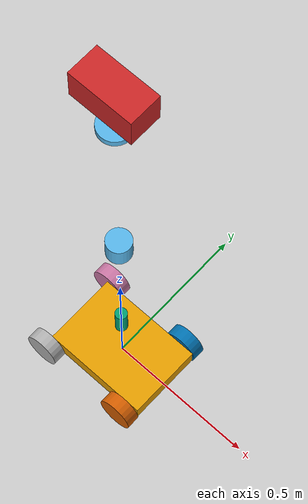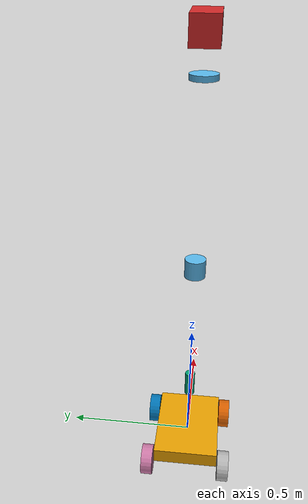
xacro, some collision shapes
<?xml version="1.0"?>

<robot name="nesfr3_simple" xmlns:xacro="http://www.ros.org/wiki/xacro">

  <xacro:arg name="index" default="1"/>

  <!-- include gazebo plugins -->
  <xacro:include filename="$(find nesfr3_description)/urdf/nesfr3.gazebo" />
  <xacro:include filename="$(find nesfr3_description)/urdf/materials.xacro" />

  <xacro:arg name="base_width" default="0.26"/>
  <xacro:arg name="base_length" default="0.371"/>
  <xacro:arg name="base_height" default="0.058"/>
  <xacro:property name="base_width" value="$(arg base_width)"/>
  <xacro:property name="base_length" value="$(arg base_length)"/>
  <xacro:property name="base_height" value="$(arg base_height)"/>

  <xacro:arg name="wheel_radius" default="0.06"/>
  <xacro:arg name="wheel_width" default="0.045"/>
  <xacro:arg name="wheel_gap" default="0.025"/>
  <xacro:arg name="wheel_setback_f" default="0.055"/> <!--원래거 -->
  <xacro:arg name="wheel_setback_b" default="-0.005"/>
  <xacro:arg name="wheel_height" default="-0.016"/>
  <xacro:property name="wheel_radius" value="$(arg wheel_radius)"/>
  <xacro:property name="wheel_width" value="$(arg wheel_width)"/>
  <xacro:property name="wheel_gap" value="$(arg wheel_gap)"/>
  <xacro:property name="wheel_setback_f" value="$(arg wheel_setback_f)"/> <!--원래거 -->
  <xacro:property name="wheel_setback_b" value="$(arg wheel_setback_b)"/>
  <xacro:property name="wheel_height" value="$(arg wheel_height)"/>

  <xacro:arg name="gpu" default="true"/>
  <xacro:arg name="lidar_height" default="0.8"/>
  <xacro:property name="gpu" value="$(arg gpu)"/>
  <xacro:property name="lidar_height" value="$(arg lidar_height)"/>

  <!--~~~~~~~~~~~~~~~~~~~~~~~~ ~ ROBOT BASE ~ ~~~~~~~~~~~~~~~~~~~~~~~~~~~~~~-->

    <!-- Make a box for robot base -->
  <link name="base_link">
    <collision>
      <origin xyz="0 0 0.0" rpy="0 0 0"/>
      <geometry>
       <box size="${base_length} ${base_width} ${base_height}"/>
      </geometry>
    </collision>
    <visual>
      <origin xyz="0 0 0.0" rpy="0 0 0"/>
      <geometry>
	       <box size="${base_length} ${base_width} ${base_height}"/>
      </geometry>
    </visual>
    <inertial>
      <mass value="7.032" />
      <origin xyz="0 0 0" rpy="0 0 0"/>

      <inertia ixx="0.041585" ixy="0" ixz="0" iyy="0.08263" iyz="0" izz="0.12027" />
    </inertial>
  </link>

  <xacro:include filename="$(find ouster_description)/urdf/OS1-64.urdf.xacro"/>
  <xacro:OS1-64 parent="base_link" name="os1_sensor" topic_points="lidar/points" hz="40" samples="1024" min_range="0.1" max_range="125" lidar_link="lidar_link" imu_link="imu_link">
      <origin xyz="0 0 ${lidar_height}" rpy="0 0 0" />
  </xacro:OS1-64>

  <link name="fl_link">
      <visual>
        <geometry>
          <cylinder length="${wheel_width}" radius="${wheel_radius}"/>
        </geometry>
        <origin rpy="${pi/2} 0 0" xyz="0 0 0"/>
      </visual>
      <collision>
        <geometry>
          <cylinder length="${wheel_width}" radius="${wheel_radius}"/>
        </geometry>
	     <origin rpy="${pi/2} 0 0" xyz="0 0 0"/>
        <surface>
          <friction>
            <ode>
              <mu>0.01</mu>
              <mu2>0.01</mu2>
            </ode>
          </friction>
        </surface>
      </collision>
      <inertial>
        <mass value="0.617" />
        <origin rpy="${pi/2} 0 0" xyz="0 0 0"/>
        <inertia ixx="0.0006594" ixy="0" ixz="0" iyy="0.0006594" iyz="0" izz="0.0011106" />
      </inertial>
    </link>

    <link name="fr_link">
        <visual>
          <geometry>
            <cylinder length="${wheel_width}" radius="${wheel_radius}"/>
          </geometry>
          <origin rpy="${pi/2} 0 0" xyz="0 0 0"/>
        </visual>
        <collision>
          <geometry>
            <cylinder length="${wheel_width}" radius="${wheel_radius}"/>
          </geometry>
          <origin rpy="${pi/2} 0 0" xyz="0 0 0"/>
        <surface>
          <friction>
            <ode>
              <mu>0.01</mu>
              <mu2>0.01</mu2>
            </ode>
          </friction>
        </surface>
        </collision>
        <inertial>
          <mass value="0.617" />
          <origin rpy="${pi/2} 0 0" xyz="0 0 0"/>
          <inertia ixx="0.0006594" ixy="0" ixz="0" iyy="0.0006594" iyz="0" izz="0.0011106" />
        </inertial>
      </link>

      <link name="bl_link">
          <visual>
            <geometry>
              <cylinder length="${wheel_width}" radius="${wheel_radius}"/>
            </geometry>
            <origin rpy="${pi/2} 0 0" xyz="0 0 0"/>
          </visual>
          <collision>
            <geometry>
              <cylinder length="${wheel_width}" radius="${wheel_radius}"/>
            </geometry>
            <origin rpy="${pi/2} 0 0" xyz="0 0 0"/>
        <surface>
          <friction>
            <ode>
              <mu>0.01</mu>
              <mu2>0.01</mu2>
            </ode>
          </friction>
        </surface>
          </collision>
          <inertial>
            <mass value="0.617" />
            <origin rpy="${pi/2} 0 0" xyz="0 0 0"/>
            <inertia ixx="0.0006594" ixy="0" ixz="0" iyy="0.0006594" iyz="0" izz="0.0011106" />
          </inertial>
        </link>

        <link name="br_link">
            <visual>
              <geometry>
                <cylinder length="${wheel_width}" radius="${wheel_radius}"/>
              </geometry>
              <origin rpy="${pi/2} 0 0" xyz="0 0 0"/>
            </visual>
            <collision>
              <geometry>
                <cylinder length="${wheel_width}" radius="${wheel_radius}"/>
              </geometry>
              <origin rpy="${pi/2} 0 0" xyz="0 0 0"/>
        <surface>
          <friction>
            <ode>
              <mu>0.01</mu>
              <mu2>0.01</mu2>
            </ode>
          </friction>
        </surface>

            </collision>
            <inertial>
              <mass value="0.617" />
              <origin rpy="${pi/2} 0 0" xyz="0 0 0"/>
              <inertia ixx="0.0006594" ixy="0" ixz="0" iyy="0.0006594" iyz="0" izz="0.0011106" />
            </inertial>
          </link>

  <!--~~~~~~~~~~~~~~~~~~~~~~~ ~ Lidar ~ ~~~~~~~~~~~~~~~~~~~~~~~~~~~~~-->

<!-- Main Camera -->

  <link name="camera_link">
    <collision>
      <origin xyz="0 0 0" rpy="0 0 0"/>
      <geometry>
	        <box size="0.2 0.1 0.1"/>
      </geometry>
    </collision>
    <visual>
      <origin xyz="0 0 0" rpy="0 0 0"/>
      <geometry>
	        <box size="0.2 0.1 0.1"/>
      </geometry>
    </visual>
    <inertial>
      <mass value="1" />
      <origin xyz="0 0 0" rpy="0 0 0"/>
      <inertia ixx="0.0016667" ixy="0" ixz="0" iyy="0.004167" iyz="0" izz="0.004167" />
    </inertial>
  </link>

  <link name="camera_rotator_link">
    <collision>
      <origin rpy="0 0 0" xyz="0 0 0"/>
      <geometry>
        <cylinder radius="0.05" length="0.02"/>
      </geometry>
    </collision>
    <visual>
      <origin rpy="0 0 0" xyz="0 0 0"/>
      <geometry>
        <cylinder radius="0.05" length="0.02"/>
      </geometry>
    </visual>
    <inertial>
      <mass value="0.33" />
      <origin xyz="0 0 0" rpy="0 0 0"/>

      <inertia ixx="0.00021725" ixy="0" ixz="0" iyy="0.00021725" iyz="0" izz="0.0004125" />
    </inertial>
  </link>

  <joint name="camera_joint_1" type="revolute">
    <parent link="base_link"/>
    <child link="camera_rotator_link"/>
    <origin xyz="0 0 1.5" rpy="0 0 0"/>
    <dynamics damping="0" friction="0.01"/>
    <axis xyz="0 0 1"/>
    <limit lower="-2.2" upper="2.2" effort="0.000001" velocity="0.01"/>
  </joint>

  <joint name="camera_joint_2" type="revolute">
    <parent link="camera_rotator_link"/>
    <child link="camera_link"/>
    <origin xyz="0 0 0.15" rpy="0 0 0"/>
    <dynamics damping="0" friction="0.01"/>
    <axis xyz="0 1 0"/>
    <limit lower="-1" upper="1" effort="0.000001" velocity="0.01"/>
  </joint>

  <!-- Fisheye Camera -->
  <link name="fisheye_camera_link">
    <visual>
        <geometry>
            <cylinder length="0.1" radius="0.02"/>
        </geometry>
        <origin rpy="0 ${pi/2} 0" xyz="0 0 0"/>
    </visual>

    <collision>
        <geometry>
            <cylinder length="0.1" radius="0.02"/>
        </geometry>
        <origin rpy="0 ${pi/2} 0" xyz="0 0 0"/>
    </collision>

    <inertial>
        <mass value="1" />
        <origin rpy="0 ${pi/2} 0" xyz="0 0 0"/>
        <inertia ixx="0.0009333" ixy="0" ixz="0" iyy="0.0009333" iyz="0" izz="0.0002" />
    </inertial>
  </link>

  <joint name="fisheye_camera_joint" type="fixed">
      <axis xyz="0 0 0" />
      <origin xyz="0.0 0 0.25" rpy="0 ${-pi/2} ${-pi/2}"/>
      <parent link="base_link"/>
      <child link="fisheye_camera_link"/>
  </joint>
  <!-- Fisheye Camera -->

  <joint name="fl_joint" type="fixed">
      <parent link="base_link"/>
      <child link="fl_link"/>
      <origin rpy="0 0 0" xyz="${base_length/2 - wheel_setback_f} ${base_width/2 + wheel_gap} ${wheel_height}"/>
      <axis xyz="0 0 0"/>
  </joint>

  <joint name="fr_joint" type="fixed">
      <parent link="base_link"/>
      <child link="fr_link"/>
      <origin rpy="0 0 0" xyz="${base_length/2 - wheel_setback_f} ${-base_width/2 - wheel_gap} ${wheel_height}"/>
      <axis xyz="0 0 0"/>
  </joint>

  <joint name="bl_joint" type="fixed">
      <parent link="base_link"/>
      <child link="bl_link"/>
      <origin rpy="0 0 0" xyz="${-base_length/2 + wheel_setback_b} ${base_width/2 + wheel_gap} ${wheel_height}"/>
      <axis xyz="0 0 0"/>
  </joint>

  <joint name="br_joint" type="fixed">
      <parent link="base_link"/>
      <child link="br_link"/>
      <origin rpy="0 0 0" xyz="${-base_length/2 + wheel_setback_b} ${-base_width/2 - wheel_gap} ${wheel_height}"/>
      <axis xyz="0 0 0"/>
  </joint>

</robot>

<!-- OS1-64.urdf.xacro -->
<robot xmlns:xacro="http://www.ros.org/wiki/xacro" name="OS1-64">
  <xacro:property name="M_PI" value="3.1415926535897931" />
  <xacro:macro name="OS1-64" params="*origin parent:=base_link name:=os1_sensor topic_points:=/os1_cloud_node/points topic_imu:=/os1_cloud_node/imu hz:=30 lasers:=64 samples:=512 min_range:=0.3 max_range:=75.0 noise:=0.008 min_angle:=-${M_PI} max_angle:=${M_PI} lidar_link:=os1_lidar imu_link:=os1_imu vfov_min:=-.26 vfov_max:=.26">

    <joint name="${name}_mount_joint" type="fixed">
      <xacro:insert_block name="origin" />
      <parent link="${parent}"/>
      <child link="${name}"/>
    </joint>

    <link name="${name}">
      <inertial>
         <mass value="0.33"/>
         <origin xyz="0 0 0.0" rpy="0 0 0" />
         <inertia ixx="0.00027855" ixy="0" ixz="0"
          iyy="0.00027855" iyz="0" izz="0.000264"/>
      </inertial>
      <collision name="base_collision">
         <origin xyz="0 0 0.0" rpy="0 0 0" />
         <geometry>
 	        <cylinder radius="0.04" length="0.073"/>
         </geometry>
      </collision>
      <visual name="base_visual">
         <origin xyz="0 0 0.0" rpy="0 0 1.5707" />
         <geometry>
	         <mesh filename="package://ouster_description/meshes/os1_64.dae" />
         </geometry>
      </visual>
    </link>

    <link name="${imu_link}" />

    <link name="${lidar_link}" />

    <joint name="${name}_imu_link_joint" type="fixed">
      <parent link="${name}" />
      <child link="${imu_link}" />
      <origin xyz="0.006253 -0.011775 0.007645" rpy="0 0 0" />
    </joint>
    <gazebo reference="${imu_link}">
    </gazebo>

    <joint name="${name}_lidar_link_joint" type="fixed">
      <parent link="${name}" />
      <child link="${lidar_link}" />
      <origin xyz="0.0 0.0 0.0" rpy="0 0 0" />
    </joint>

    <!-- Gazebo requires the ouster_gazebo_plugins package -->
    <gazebo reference="${name}">
        <sensor type="gpu_ray" name="${name}-OS1-64">
          <pose>0 0 0 0 0 0</pose>
          <visualize>false</visualize>
          <update_rate>${hz}</update_rate>
          <ray>
            <scan>
              <horizontal>
                <samples>${samples}</samples>
                <resolution>1</resolution>
                <min_angle>${min_angle}</min_angle>
                <max_angle>${max_angle}</max_angle>
              </horizontal>
              <vertical>
                <samples>${lasers}</samples>
                <resolution>1</resolution>
                <min_angle>${vfov_min}</min_angle>
                <max_angle>${vfov_max}</max_angle>
              </vertical>
            </scan>
            <range>
              <min>${min_range}</min>
              <max>${max_range}</max>
              <resolution>0.03</resolution>
            </range>
          </ray>
          <plugin name="gazebo_ros_laser_controller" filename="libgazebo_ros_ouster_gpu_laser.so">
            <topicName>${topic_points}</topicName>
            <frameName>${lidar_link}</frameName>
            <min_range>${min_range}</min_range>
            <max_range>${max_range}</max_range>
            <gaussianNoise>${noise}</gaussianNoise>
          </plugin>
        </sensor>
    </gazebo>

    <!-- IMU -->
  <gazebo>
    <plugin name="imu_controller" filename="libhector_gazebo_ros_imu.so">
      <robotNamespace>/</robotNamespace>
      <updateRate>100.0</updateRate>
      <bodyName>${imu_link}</bodyName>
      <topicName>${topic_imu}</topicName>
      <accelDrift>0.005 0.005 0.005</accelDrift>
      <accelGaussianNoise>0.005 0.005 0.005</accelGaussianNoise>
      <rateDrift>0.005 0.005 0.005 </rateDrift>
      <rateGaussianNoise>0.005 0.005 0.005 </rateGaussianNoise>
      <headingDrift>0.005</headingDrift>
      <headingGaussianNoise>0.005</headingGaussianNoise>
    </plugin>
  </gazebo>

  </xacro:macro>
</robot>
